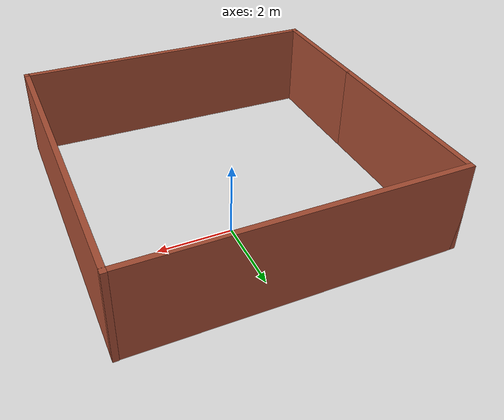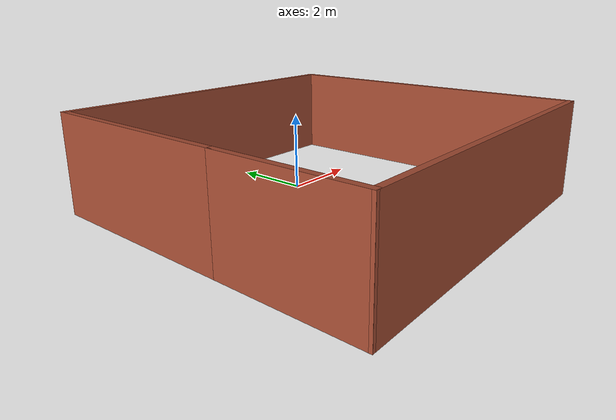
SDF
<?xml version='1.0'?>
<sdf version='1.7'>
  <model name='BOX'>
    <pose>-0.472064 -1.56338 0 0 -0 0</pose>
    <link name='Wall_11'>
      <collision name='Wall_11_Collision'>
        <geometry>
          <box>
            <size>3.5 0.15 2.5</size>
          </box>
        </geometry>
        <pose>0 0 1.25 0 -0 0</pose>
      </collision>
      <visual name='Wall_11_Visual'>
        <pose>0 0 1.25 0 -0 0</pose>
        <geometry>
          <box>
            <size>3.5 0.15 2.5</size>
          </box>
        </geometry>
        <material>
          <script>
            <uri>file://media/materials/scripts/gazebo.material</uri>
            <name>Gazebo/Bricks</name>
          </script>
          <ambient>1 1 1 1</ambient>
        </material>
        <meta>
          <layer>0</layer>
        </meta>
      </visual>
      <pose>-4.3 -2.48268 0 0 -0 -1.5708</pose>
    </link>
    <link name='Wall_12'>
      <collision name='Wall_12_Collision'>
        <geometry>
          <box>
            <size>8.75129 0.15 2.5</size>
          </box>
        </geometry>
        <pose>0 0 1.25 0 -0 0</pose>
      </collision>
      <visual name='Wall_12_Visual'>
        <pose>0 0 1.25 0 -0 0</pose>
        <geometry>
          <box>
            <size>8.75129 0.15 2.5</size>
          </box>
        </geometry>
        <material>
          <script>
            <uri>file://media/materials/scripts/gazebo.material</uri>
            <name>Gazebo/Bricks</name>
          </script>
          <ambient>1 1 1 1</ambient>
        </material>
        <meta>
          <layer>0</layer>
        </meta>
      </visual>
      <pose>0 -4.22977 0 0 -0 -0.016764</pose>
    </link>
    <link name='Wall_13'>
      <collision name='Wall_13_Collision'>
        <geometry>
          <box>
            <size>8.75 0.15 2.5</size>
          </box>
        </geometry>
        <pose>0 0 1.25 0 -0 0</pose>
      </collision>
      <visual name='Wall_13_Visual'>
        <pose>0 0 1.25 0 -0 0</pose>
        <geometry>
          <box>
            <size>8.75 0.15 2.5</size>
          </box>
        </geometry>
        <material>
          <script>
            <uri>file://media/materials/scripts/gazebo.material</uri>
            <name>Gazebo/Bricks</name>
          </script>
          <ambient>1 1 1 1</ambient>
        </material>
        <meta>
          <layer>0</layer>
        </meta>
      </visual>
      <pose>4.3 0.003109 0 0 -0 1.5708</pose>
    </link>
    <link name='Wall_15'>
      <collision name='Wall_15_Collision'>
        <geometry>
          <box>
            <size>5.25 0.15 2.5</size>
          </box>
        </geometry>
        <pose>0 0 1.25 0 -0 0</pose>
      </collision>
      <visual name='Wall_15_Visual'>
        <pose>0 0 1.25 0 -0 0</pose>
        <geometry>
          <box>
            <size>5.25 0.15 2.5</size>
          </box>
        </geometry>
        <material>
          <script>
            <uri>file://media/materials/scripts/gazebo.material</uri>
            <name>Gazebo/Bricks</name>
          </script>
          <ambient>1 1 1 1</ambient>
        </material>
        <meta>
          <layer>0</layer>
        </meta>
      </visual>
      <pose>-4.3 1.74232 0 0 -0 1.5708</pose>
    </link>
    <link name='Wall_16'>
      <collision name='Wall_16_Collision'>
        <geometry>
          <box>
            <size>8.75 0.15 2.5</size>
          </box>
        </geometry>
        <pose>0 0 1.25 0 -0 0</pose>
      </collision>
      <visual name='Wall_16_Visual'>
        <pose>0 0 1.25 0 -0 0</pose>
        <geometry>
          <box>
            <size>8.75 0.15 2.5</size>
          </box>
        </geometry>
        <material>
          <script>
            <uri>file://media/materials/scripts/gazebo.material</uri>
            <name>Gazebo/Bricks</name>
          </script>
          <ambient>1 1 1 1</ambient>
        </material>
        <meta>
          <layer>0</layer>
        </meta>
      </visual>
      <pose>0 4.29232 0 0 -0 0</pose>
    </link>
    <static>1</static>
  </model>
</sdf>
